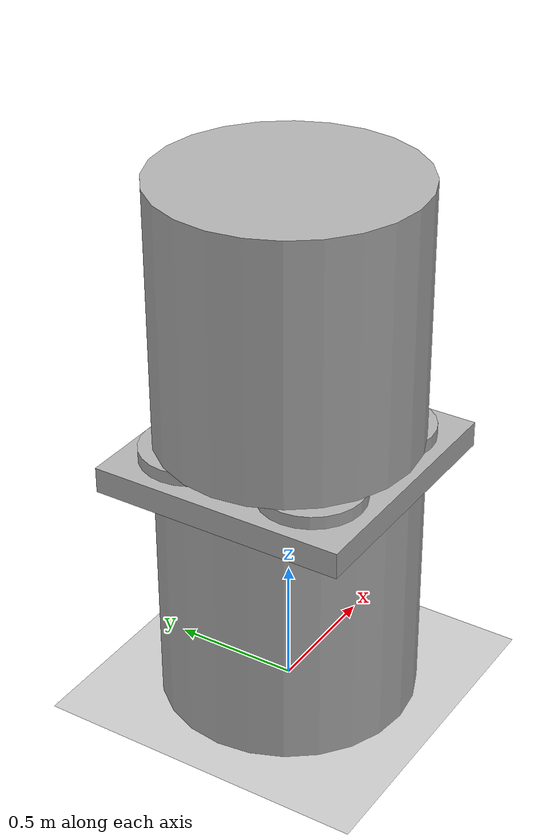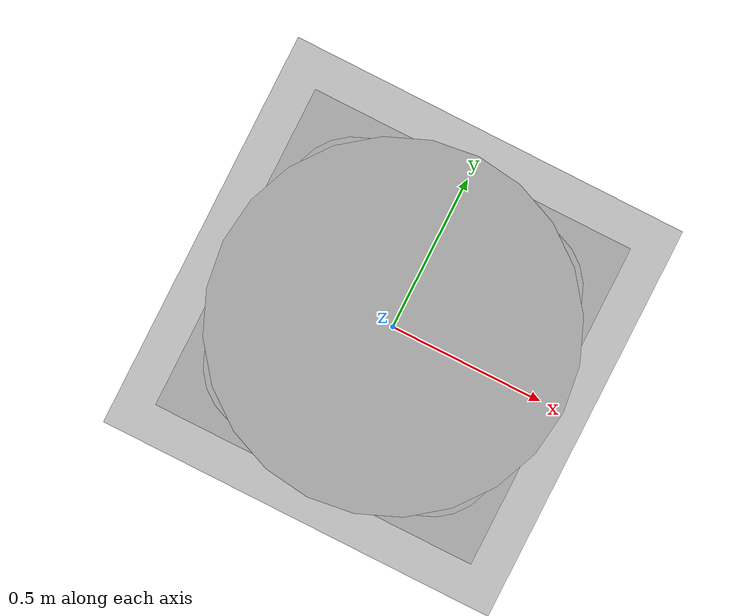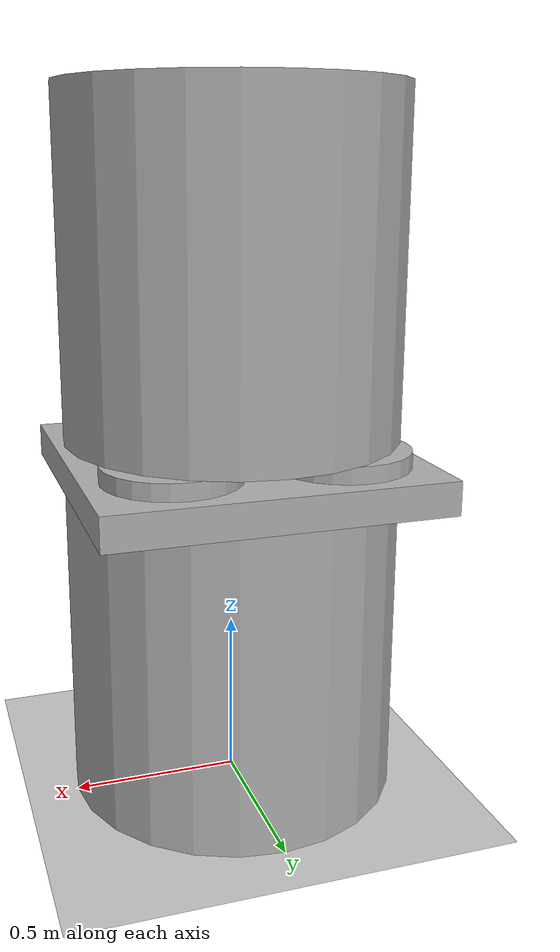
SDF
<?xml version="1.0" ?>
<sdf version="1.6">
  <world name="capsules">
    <physics name='1ms' type='ignored'>
      <max_step_size>0.001</max_step_size>
      <real_time_factor>1</real_time_factor>
      <real_time_update_rate>1000</real_time_update_rate>
    </physics>
    <plugin name='gz::sim::systems::Physics' filename='ignition-gazebo-physics-system'/>
    <plugin name='gz::sim::systems::UserCommands' filename='ignition-gazebo-user-commands-system'/>
    <plugin name='gz::sim::systems::SceneBroadcaster' filename='ignition-gazebo-scene-broadcaster-system'/>
    <plugin name='gz::sim::systems::Contact' filename='ignition-gazebo-contact-system'/>
    <gravity>0 0 -9.8</gravity>
    <magnetic_field>6e-06 2.3e-05 -4.2e-05</magnetic_field>
    <atmosphere type='adiabatic'/>

    <light type="directional" name="sun">
      <cast_shadows>true</cast_shadows>
      <pose>0 0 10 0 0 0</pose>
      <diffuse>0.8 0.8 0.8 1</diffuse>
      <specular>0.2 0.2 0.2 1</specular>
      <attenuation>
        <range>1000</range>
        <constant>0.9</constant>
        <linear>0.01</linear>
        <quadratic>0.001</quadratic>
      </attenuation>
      <direction>-0.5 0.1 -0.9</direction>
    </light>

    <model name="ground_plane">
      <static>true</static>
      <link name="link">
        <collision name="collision">
          <geometry>
            <plane>
              <normal>0.0 0.0 1</normal>
            </plane>
          </geometry>
        </collision>
        <visual name="visual">
          <geometry>
            <plane>
              <normal>0.0 0.0 1</normal>
              <size>100 100</size>
            </plane>
          </geometry>
          <material>
            <ambient>0.8 0.8 0.8 1</ambient>
            <diffuse>0.8 0.8 0.8 1</diffuse>
            <specular>0.8 0.8 0.8 1</specular>
          </material>
        </visual>
      </link>
    </model>

    <include>
      <uri>model://magnets</uri>
      <name>magnets</name>
      <pose>0 0 1 0 0 0</pose>
      <static>false</static>
    </include>

    <model name='cylinder_top'>
      <pose>0 0 1.6 -0 0 -0</pose>
      <link name='cylinder_link'>
        <inertial>
          <inertia>
            <ixx>0.14580000000000001</ixx>
            <ixy>0</ixy>
            <ixz>0</ixz>
            <iyy>0.14580000000000001</iyy>
            <iyz>0</iyz>
            <izz>0.125</izz>
          </inertia>
          <mass>100</mass>
          <pose>0 0 0 0 -0 0</pose>
        </inertial>
        <collision name='cylinder_collision'>
          <geometry>
            <cylinder>
              <radius>0.5</radius>
              <length>1</length>
            </cylinder>
          </geometry>
          <surface>
            <friction>
              <ode/>
            </friction>
            <bounce/>
            <contact/>
          </surface>
        </collision>
        <visual name='cylinder_visual'>
          <geometry>
            <cylinder>
              <radius>0.5</radius>
              <length>1</length>
            </cylinder>
          </geometry>
          <material>
            <ambient>0.3 0.3 0.3 1</ambient>
            <diffuse>0.7 0.7 0.7 1</diffuse>
            <specular>1 1 1 1</specular>
          </material>
        </visual>
        <pose>0 0 0 0 -0 0</pose>
        <enable_wind>false</enable_wind>
      </link>
      <static>true</static>
      <self_collide>false</self_collide>
    </model>

  <model name='cylinder_bottom'>
      <pose>0 0 0.5 -0 0 -0</pose>
      <link name='cylinder_link'>
        <inertial>
          <inertia>
            <ixx>0.14580000000000001</ixx>
            <ixy>0</ixy>
            <ixz>0</ixz>
            <iyy>0.14580000000000001</iyy>
            <iyz>0</iyz>
            <izz>0.125</izz>
          </inertia>
          <mass>100</mass>
          <pose>0 0 0 0 -0 0</pose>
        </inertial>
        <collision name='cylinder_collision'>
          <geometry>
            <cylinder>
              <radius>0.5</radius>
              <length>1</length>
            </cylinder>
          </geometry>
          <surface>
            <friction>
              <ode/>
            </friction>
            <bounce/>
            <contact/>
          </surface>
        </collision>
        <visual name='cylinder_visual'>
          <geometry>
            <cylinder>
              <radius>0.5</radius>
              <length>1</length>
            </cylinder>
          </geometry>
          <material>
            <ambient>0.3 0.3 0.3 1</ambient>
            <diffuse>0.7 0.7 0.7 1</diffuse>
            <specular>1 1 1 1</specular>
          </material>
        </visual>
        <pose>0 0 0 0 -0 0</pose>
        <enable_wind>false</enable_wind>
      </link>
      <static>false</static>
      <self_collide>false</self_collide>
    </model>

  </world>
</sdf>

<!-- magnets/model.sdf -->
<sdf version="1.6">

    <model name='magnets'>

      <pose>0 0 0 0 0 0</pose>

      <link name='box_link'>
        <inertial>
          <inertia>
            <ixx>0.16666</ixx>
            <ixy>0</ixy>
            <ixz>0</ixz>
            <iyy>0.16666</iyy>
            <iyz>0</iyz>
            <izz>0.16666</izz>
          </inertia>
          <mass>1</mass>
          <pose>0 0 0 0 0 0</pose>
        </inertial>
        <collision name='box_collision'>
          <geometry>
            <box>
              <size>1 1 0.1</size>
            </box>
          </geometry>
          <surface>
            <friction>
              <ode/>
            </friction>
            <bounce/>
            <contact/>
          </surface>
        </collision>
        <visual name='box_visual'>
          <geometry>
            <box>
              <size>1 1 0.1</size>
            </box>
          </geometry>
          <material>
            <ambient>0.3 0.3 0.3 1</ambient>
            <diffuse>0.7 0.7 0.7 1</diffuse>
            <specular>1 1 1 1</specular>
          </material>
        </visual>
        <pose>0 0 0 0 -0 0</pose>
        <enable_wind>false</enable_wind>
      </link>

      <link name='magnet_1'>
        <sensor name='sensor_contact' type='contact'>
          <contact>
              <collision>magnet_1_collision</collision>
              <topic>magnet_1_contact</topic>
          </contact>
        </sensor>
        <inertial>
          <inertia>
            <ixx>0.14580000000000001</ixx>
            <ixy>0</ixy>
            <ixz>0</ixz>
            <iyy>0.14580000000000001</iyy>
            <iyz>0</iyz>
            <izz>0.125</izz>
          </inertia>
          <mass>1</mass>
          <pose>0 0 0 0 0 0</pose>
        </inertial>
        <collision name='magnet_1_collision'>
          <geometry>
            <cylinder>
              <radius>0.2</radius>
              <length>0.1</length>
            </cylinder>
          </geometry>
          <surface>
            <friction>
              <ode/>
            </friction>
            <bounce/>
            <contact/>
          </surface>
        </collision>
        <visual name='magnet_1_visual'>
          <geometry>
            <cylinder>
              <radius>0.2</radius>
              <length>0.1</length>
            </cylinder>
          </geometry>
          <material>
            <ambient>0.3 0.3 0.3 1</ambient>
            <diffuse>0.7 0.7 0.7 1</diffuse>
            <specular>1 1 1 1</specular>
          </material>
        </visual>
        <pose>0.25 0.25 0.05 0 -0 0</pose>
        <enable_wind>false</enable_wind>
      </link>

      <link name='magnet_2'>
        <sensor name='sensor_contact' type='contact'>
          <contact>
              <collision>magnet_2_collision</collision>
              <topic>magnet_2_contact</topic>
          </contact>
        </sensor>
        <inertial>
          <inertia>
            <ixx>0.14580000000000001</ixx>
            <ixy>0</ixy>
            <ixz>0</ixz>
            <iyy>0.14580000000000001</iyy>
            <iyz>0</iyz>
            <izz>0.125</izz>
          </inertia>
          <mass>1</mass>
          <pose>0 0 0 0 0 0</pose>
        </inertial>
        <collision name='magnet_2_collision'>
          <geometry>
            <cylinder>
              <radius>0.2</radius>
              <length>0.1</length>
            </cylinder>
          </geometry>
          <surface>
            <friction>
              <ode/>
            </friction>
            <bounce/>
            <contact/>
          </surface>
        </collision>
        <visual name='magnet_2_visual'>
          <geometry>
            <cylinder>
              <radius>0.2</radius>
              <length>0.1</length>
            </cylinder>
          </geometry>
          <material>
            <ambient>0.3 0.3 0.3 1</ambient>
            <diffuse>0.7 0.7 0.7 1</diffuse>
            <specular>1 1 1 1</specular>
          </material>
        </visual>
        <pose>0.25 -0.25 0.05 0 -0 0</pose>
        <enable_wind>false</enable_wind>
      </link>

      <link name='magnet_3'>
        <sensor name='sensor_contact' type='contact'>
          <contact>
              <collision>magnet_3_collision</collision>
              <topic>magnet_3_contact</topic>
          </contact>
        </sensor>
        <inertial>
          <inertia>
            <ixx>0.14580000000000001</ixx>
            <ixy>0</ixy>
            <ixz>0</ixz>
            <iyy>0.14580000000000001</iyy>
            <iyz>0</iyz>
            <izz>0.125</izz>
          </inertia>
          <mass>1</mass>
          <pose>0 0 0 0 0 0</pose>
        </inertial>
        <collision name='magnet_3_collision'>
          <geometry>
            <cylinder>
              <radius>0.2</radius>
              <length>0.1</length>
            </cylinder>
          </geometry>
          <surface>
            <friction>
              <ode/>
            </friction>
            <bounce/>
            <contact/>
          </surface>
        </collision>
        <visual name='magnet_3_visual'>
          <geometry>
            <cylinder>
              <radius>0.2</radius>
              <length>0.1</length>
            </cylinder>
          </geometry>
          <material>
            <ambient>0.3 0.3 0.3 1</ambient>
            <diffuse>0.7 0.7 0.7 1</diffuse>
            <specular>1 1 1 1</specular>
          </material>
        </visual>
        <pose>-0.25 -0.25 0.05 0 -0 0</pose>
        <enable_wind>false</enable_wind>
      </link>

      <link name='magnet_4'>
        <sensor name='sensor_contact' type='contact'>
          <contact>
              <collision>magnet_4_collision</collision>
              <topic>magnet_4_contact</topic>
          </contact>
        </sensor>
        <inertial>
          <inertia>
            <ixx>0.14580000000000001</ixx>
            <ixy>0</ixy>
            <ixz>0</ixz>
            <iyy>0.14580000000000001</iyy>
            <iyz>0</iyz>
            <izz>0.125</izz>
          </inertia>
          <mass>1</mass>
          <pose>0 0 0 0 0 0</pose>
        </inertial>
        <collision name='magnet_4_collision'>
          <geometry>
            <cylinder>
              <radius>0.2</radius>
              <length>0.1</length>
            </cylinder>
          </geometry>
          <surface>
            <friction>
              <ode/>
            </friction>
            <bounce/>
            <contact/>
          </surface>
        </collision>
        <visual name='magnet_4_visual'>
          <geometry>
            <cylinder>
              <radius>0.2</radius>
              <length>0.1</length>
            </cylinder>
          </geometry>
          <material>
            <ambient>0.3 0.3 0.3 1</ambient>
            <diffuse>0.7 0.7 0.7 1</diffuse>
            <specular>1 1 1 1</specular>
          </material>
        </visual>
        <pose>-0.25 0.25 0.05 0 -0 0</pose>
        <enable_wind>false</enable_wind>
      </link>

      <joint name="joint_magnet_1" type="fixed">
        <child>magnet_1</child>
        <parent>box_link</parent>
      </joint>

      <joint name="joint_magnet_2" type="fixed">
        <child>magnet_2</child>
        <parent>box_link</parent>
      </joint>

      <joint name="joint_magnet_3" type="fixed">
        <child>magnet_3</child>
        <parent>box_link</parent>
      </joint>

      <joint name="joint_magnet_4" type="fixed">
        <child>magnet_4</child>
        <parent>box_link</parent>
      </joint>

      <static>false</static>
      <self_collide>false</self_collide>

      <plugin name='ignition::gazebo::systems::MagnetPlugin' filename='MagnetPlugin'>
        <source>
          <link_name>magnet_1</link_name>
          <collision_name>magnet_1_collision</collision_name>
        </source>
        <source>
          <link_name>magnet_2</link_name>
          <collision_name>magnet_2_collision</collision_name>
        </source>
        <source>
          <link_name>magnet_3</link_name>
          <collision_name>magnet_3_collision</collision_name>
        </source>
        <source>
          <link_name>magnet_4</link_name>
          <collision_name>magnet_4_collision</collision_name>
        </source>

        <target>
          <model_name>cylinder_top</model_name>
          <link_name>cylinder_link</link_name>
          <collision_name>cylinder_collision</collision_name>
        </target>

        <switch_topic>/switch</switch_topic>
        <connection_topic>/connection</connection_topic>
        <status_topic>/status</status_topic>
      </plugin>

    </model>

</sdf>
